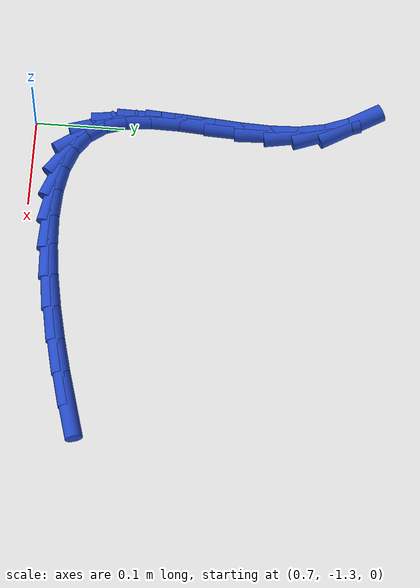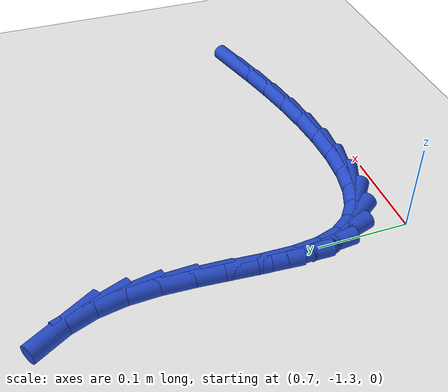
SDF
<sdf version="1.6">
 <world name="default">
  <model name="ground_plane">
   <static>1</static>
   <link name="link">
    <collision name="collision">
     <geometry><plane><normal>0 0 1</normal><size>100 100</size></plane></geometry>
     <surface><friction><ode><mu>100</mu><mu2>50</mu2></ode></friction></surface>
    </collision>
    <visual name="visual">
     <cast_shadows>0</cast_shadows>
     <geometry><plane><normal>0 0 1</normal><size>100 100</size></plane></geometry>
     <material>
      <script><uri>file://media/materials/scripts/gazebo.material</uri><name>Gazebo/WhiteGlow</name></script>
     </material>
    </visual>
   </link>
  </model>
  <model name="line">
   <link name="link_191">
    <pose>1.0388961393536267 -1.2331289106125187 0.01 0 1.57 0.2690903571147378</pose>
    <collision name="collision">
     <geometry><cylinder><radius>0.01</radius><length>0.08</length></cylinder></geometry>
    </collision>
    <visual name="visual">
     <material>
      <script><name>Gazebo/Blue</name><uri>file://media/materials/scripts/gazebo.material</uri></script>
     </material>
     <geometry><cylinder><radius>0.01</radius><length>0.08</length></cylinder></geometry>
    </visual>
   </link>
   <link name="link_192">
    <pose>1.0020607838460436 -1.2432873305150085 0.01 0 1.57 0.2419823849128005</pose>
    <collision name="collision">
     <geometry><cylinder><radius>0.01</radius><length>0.08</length></cylinder></geometry>
    </collision>
    <visual name="visual">
     <material>
      <script><name>Gazebo/Blue</name><uri>file://media/materials/scripts/gazebo.material</uri></script>
     </material>
     <geometry><cylinder><radius>0.01</radius><length>0.08</length></cylinder></geometry>
    </visual>
   </link>
   <link name="link_193">
    <pose>0.9641912641368732 -1.2526342409788591 0.01 0 1.57 0.20818808801898944</pose>
    <collision name="collision">
     <geometry><cylinder><radius>0.01</radius><length>0.08</length></cylinder></geometry>
    </collision>
    <visual name="visual">
     <material>
      <script><name>Gazebo/Blue</name><uri>file://media/materials/scripts/gazebo.material</uri></script>
     </material>
     <geometry><cylinder><radius>0.01</radius><length>0.08</length></cylinder></geometry>
    </visual>
   </link>
   <link name="link_194">
    <pose>0.9260386268706512 -1.2606939454254302 0.01 0 1.57 0.1655621921781523</pose>
    <collision name="collision">
     <geometry><cylinder><radius>0.01</radius><length>0.08</length></cylinder></geometry>
    </collision>
    <visual name="visual">
     <material>
      <script><name>Gazebo/Blue</name><uri>file://media/materials/scripts/gazebo.material</uri></script>
     </material>
     <geometry><cylinder><radius>0.01</radius><length>0.08</length></cylinder></geometry>
    </visual>
   </link>
   <link name="link_195">
    <pose>0.8883539186919104 -1.266990747276079 0.01 0 1.57 0.11083206443454709</pose>
    <collision name="collision">
     <geometry><cylinder><radius>0.01</radius><length>0.08</length></cylinder></geometry>
    </collision>
    <visual name="visual">
     <material>
      <script><name>Gazebo/Blue</name><uri>file://media/materials/scripts/gazebo.material</uri></script>
     </material>
     <geometry><cylinder><radius>0.01</radius><length>0.08</length></cylinder></geometry>
    </visual>
   </link>
   <link name="link_196">
    <pose>0.8518881862451856 -1.2710489499521649 0.01 0 1.57 0.03893897592711079</pose>
    <collision name="collision">
     <geometry><cylinder><radius>0.01</radius><length>0.08</length></cylinder></geometry>
    </collision>
    <visual name="visual">
     <material>
      <script><name>Gazebo/Blue</name><uri>file://media/materials/scripts/gazebo.material</uri></script>
     </material>
     <geometry><cylinder><radius>0.01</radius><length>0.08</length></cylinder></geometry>
    </visual>
   </link>
   <link name="link_197">
    <pose>0.8173924761750103 -1.272392856875045 0.01 0 1.57 -0.058034091691979775</pose>
    <collision name="collision">
     <geometry><cylinder><radius>0.01</radius><length>0.08</length></cylinder></geometry>
    </collision>
    <visual name="visual">
     <material>
      <script><name>Gazebo/Blue</name><uri>file://media/materials/scripts/gazebo.material</uri></script>
     </material>
     <geometry><cylinder><radius>0.01</radius><length>0.08</length></cylinder></geometry>
    </visual>
   </link>
   <link name="link_198">
    <pose>0.785617835125919 -1.2705467714660788 0.01 0 1.57 -0.19233757329633053</pose>
    <collision name="collision">
     <geometry><cylinder><radius>0.01</radius><length>0.08</length></cylinder></geometry>
    </collision>
    <visual name="visual">
     <material>
      <script><name>Gazebo/Blue</name><uri>file://media/materials/scripts/gazebo.material</uri></script>
     </material>
     <geometry><cylinder><radius>0.01</radius><length>0.08</length></cylinder></geometry>
    </visual>
   </link>
   <link name="link_199">
    <pose>0.7573153097424452 -1.2650349971466237 0.01 0 1.57 -0.3812728085552005</pose>
    <collision name="collision">
     <geometry><cylinder><radius>0.01</radius><length>0.08</length></cylinder></geometry>
    </collision>
    <visual name="visual">
     <material>
      <script><name>Gazebo/Blue</name><uri>file://media/materials/scripts/gazebo.material</uri></script>
     </material>
     <geometry><cylinder><radius>0.01</radius><length>0.08</length></cylinder></geometry>
    </visual>
   </link>
   <link name="link_200">
    <pose>0.7332359466691238 -1.2553818373380392 0.01 0 1.57 -0.6415343897745828</pose>
    <collision name="collision">
     <geometry><cylinder><radius>0.01</radius><length>0.08</length></cylinder></geometry>
    </collision>
    <visual name="visual">
     <material>
      <script><name>Gazebo/Blue</name><uri>file://media/materials/scripts/gazebo.material</uri></script>
     </material>
     <geometry><cylinder><radius>0.01</radius><length>0.08</length></cylinder></geometry>
    </visual>
   </link>
   <link name="link_201">
    <pose>0.7141307925504881 -1.2411115954616827 0.01 0 1.57 -0.9660965268969927</pose>
    <collision name="collision">
     <geometry><cylinder><radius>0.01</radius><length>0.08</length></cylinder></geometry>
    </collision>
    <visual name="visual">
     <material>
      <script><name>Gazebo/Blue</name><uri>file://media/materials/scripts/gazebo.material</uri></script>
     </material>
     <geometry><cylinder><radius>0.01</radius><length>0.08</length></cylinder></geometry>
    </visual>
   </link>
   <link name="link_202">
    <pose>0.7007501715065154 -1.2217490977297618 0.01 0 1.57 -1.2768903737568975</pose>
    <collision name="collision">
     <geometry><cylinder><radius>0.01</radius><length>0.08</length></cylinder></geometry>
    </collision>
    <visual name="visual">
     <material>
      <script><name>Gazebo/Blue</name><uri>file://media/materials/scripts/gazebo.material</uri></script>
     </material>
     <geometry><cylinder><radius>0.01</radius><length>0.08</length></cylinder></geometry>
    </visual>
   </link>
   <link name="link_203">
    <pose>0.6933195387621144 -1.1971989452040497 0.01 0 1.57 -1.4770718927501838</pose>
    <collision name="collision">
     <geometry><cylinder><radius>0.01</radius><length>0.08</length></cylinder></geometry>
    </collision>
    <visual name="visual">
     <material>
      <script><name>Gazebo/Blue</name><uri>file://media/materials/scripts/gazebo.material</uri></script>
     </material>
     <geometry><cylinder><radius>0.01</radius><length>0.08</length></cylinder></geometry>
    </visual>
   </link>
   <link name="link_204">
    <pose>0.6906138757513729 -1.168415245729609 0.01 0 1.57 1.5536782939624831</pose>
    <collision name="collision">
     <geometry><cylinder><radius>0.01</radius><length>0.08</length></cylinder></geometry>
    </collision>
    <visual name="visual">
     <material>
      <script><name>Gazebo/Blue</name><uri>file://media/materials/scripts/gazebo.material</uri></script>
     </material>
     <geometry><cylinder><radius>0.01</radius><length>0.08</length></cylinder></geometry>
    </visual>
   </link>
   <link name="link_205">
    <pose>0.6911597095838888 -1.1365318790994943 0.01 0 1.57 1.5022505345761903</pose>
    <collision name="collision">
     <geometry><cylinder><radius>0.01</radius><length>0.08</length></cylinder></geometry>
    </collision>
    <visual name="visual">
     <material>
      <script><name>Gazebo/Blue</name><uri>file://media/materials/scripts/gazebo.material</uri></script>
     </material>
     <geometry><cylinder><radius>0.01</radius><length>0.08</length></cylinder></geometry>
    </visual>
   </link>
   <link name="link_206">
    <pose>0.6934835673692603 -1.1026827251067592 0.01 0 1.57 1.495152917112727</pose>
    <collision name="collision">
     <geometry><cylinder><radius>0.01</radius><length>0.08</length></cylinder></geometry>
    </collision>
    <visual name="visual">
     <material>
      <script><name>Gazebo/Blue</name><uri>file://media/materials/scripts/gazebo.material</uri></script>
     </material>
     <geometry><cylinder><radius>0.01</radius><length>0.08</length></cylinder></geometry>
    </visual>
   </link>
   <link name="link_207">
    <pose>0.6961119762170854 -1.068001663544459 0.01 0 1.57 1.528369048625528</pose>
    <collision name="collision">
     <geometry><cylinder><radius>0.01</radius><length>0.08</length></cylinder></geometry>
    </collision>
    <visual name="visual">
     <material>
      <script><name>Gazebo/Blue</name><uri>file://media/materials/scripts/gazebo.material</uri></script>
     </material>
     <geometry><cylinder><radius>0.01</radius><length>0.08</length></cylinder></geometry>
    </visual>
   </link>
   <link name="link_208">
    <pose>0.6975714632369624 -1.033622574205648 0.01 0 1.57 -1.5349042956697498</pose>
    <collision name="collision">
     <geometry><cylinder><radius>0.01</radius><length>0.08</length></cylinder></geometry>
    </collision>
    <visual name="visual">
     <material>
      <script><name>Gazebo/Blue</name><uri>file://media/materials/scripts/gazebo.material</uri></script>
     </material>
     <geometry><cylinder><radius>0.01</radius><length>0.08</length></cylinder></geometry>
    </visual>
   </link>
   <link name="link_209">
    <pose>0.6963885555384896 -1.0006793368833817 0.01 0 1.57 -1.3989733138726401</pose>
    <collision name="collision">
     <geometry><cylinder><radius>0.01</radius><length>0.08</length></cylinder></geometry>
    </collision>
    <visual name="visual">
     <material>
      <script><name>Gazebo/Blue</name><uri>file://media/materials/scripts/gazebo.material</uri></script>
     </material>
     <geometry><cylinder><radius>0.01</radius><length>0.08</length></cylinder></geometry>
    </visual>
   </link>
   <link name="link_210">
    <pose>0.6911144920427899 -0.9702872570012617 0.01 0 1.57 -1.220905335106608</pose>
    <collision name="collision">
     <geometry><cylinder><radius>0.01</radius><length>0.08</length></cylinder></geometry>
    </collision>
    <visual name="visual">
     <material>
      <script><name>Gazebo/Blue</name><uri>file://media/materials/scripts/gazebo.material</uri></script>
     </material>
     <geometry><cylinder><radius>0.01</radius><length>0.08</length></cylinder></geometry>
    </visual>
   </link>
   <link name="link_211">
    <pose>0.6811336665117776 -0.9429354080367937 0.01 0 1.57 -1.0442898593829222</pose>
    <collision name="collision">
     <geometry><cylinder><radius>0.01</radius><length>0.08</length></cylinder></geometry>
    </collision>
    <visual name="visual">
     <material>
      <script><name>Gazebo/Blue</name><uri>file://media/materials/scripts/gazebo.material</uri></script>
     </material>
     <geometry><cylinder><radius>0.01</radius><length>0.08</length></cylinder></geometry>
    </visual>
   </link>
  </model>
 </world>
</sdf>
